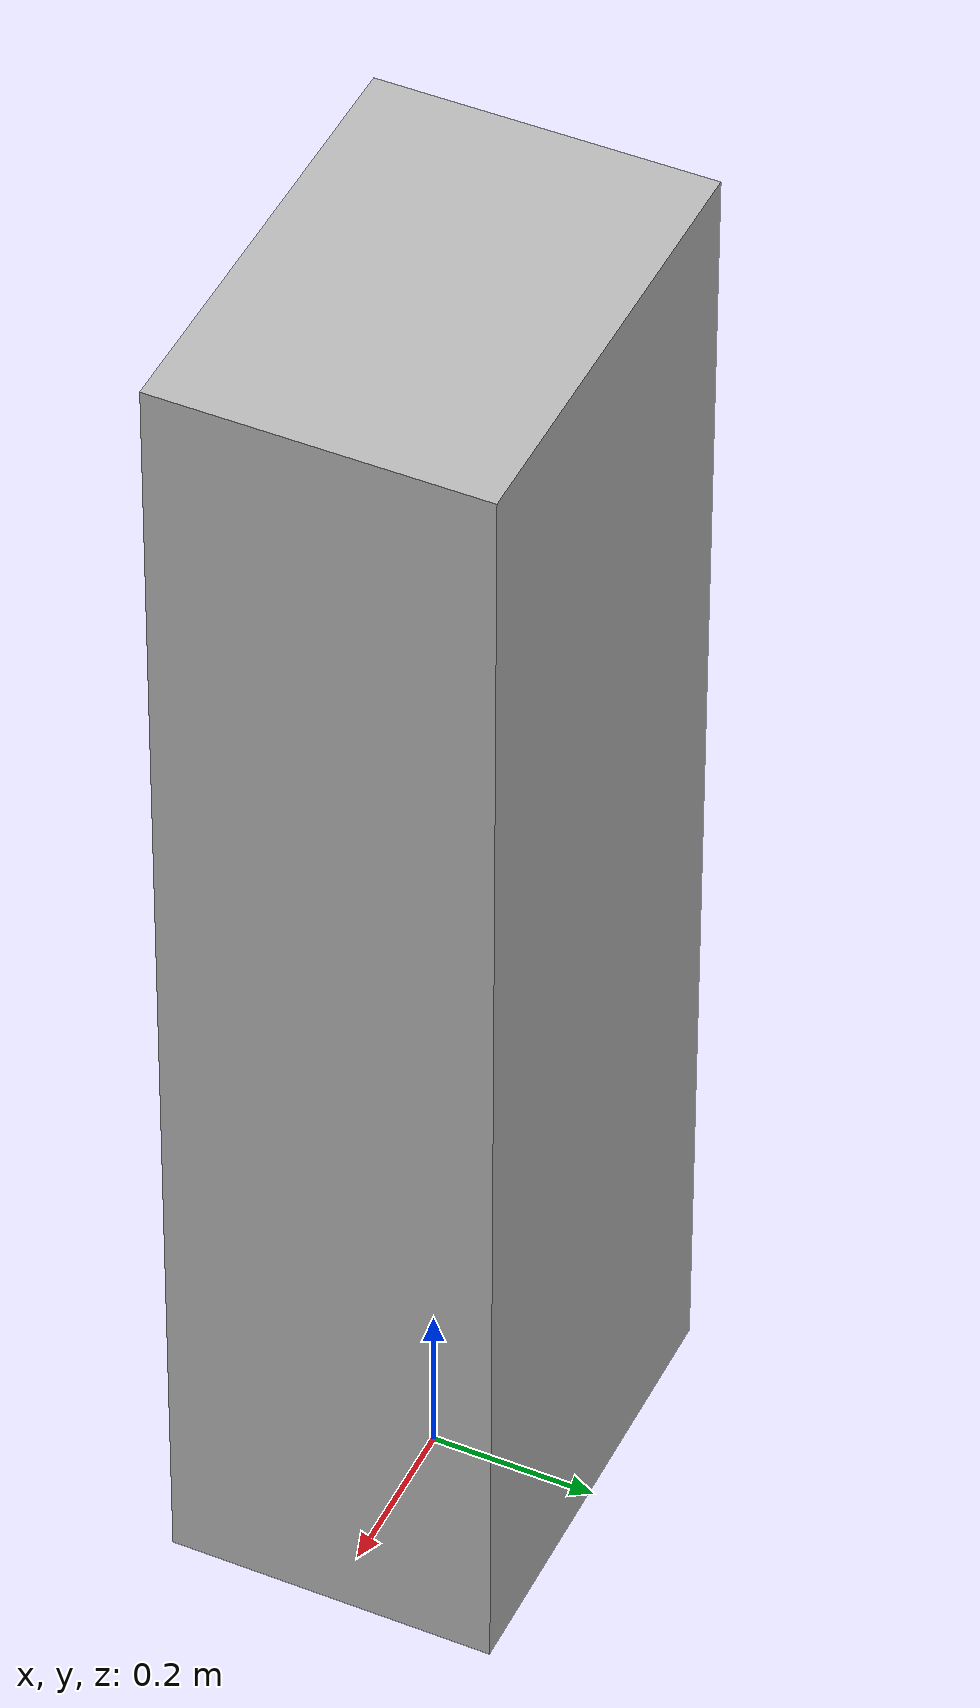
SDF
<?xml version='1.0'?>
<sdf version='1.6'>
  <model name='person_ryan'>
    <link name='link_1'>

    <inertial>
        <mass>1.0</mass>
        <inertia> <!-- inertias are tricky to compute -->
          <!-- http://gazebosim.org/tutorials?tut=inertia&cat=build_robot -->
          <ixx>0.001666666666666667</ixx>       <!-- for a box: ixx = 0.083 * mass * (y*y + z*z) -->
          <ixy>0.0</ixy>         <!-- for a box: ixy = 0 -->
          <ixz>0.0</ixz>         <!-- for a box: ixz = 0 -->
          <iyy>0.001666666666666667</iyy>       <!-- for a box: iyy = 0.083 * mass * (x*x + z*z) -->
          <iyz>0.0</iyz>         <!-- for a box: iyz = 0 -->
          <izz>0.001666666666666667</izz>       <!-- for a box: izz = 0.083 * mass * (x*x + y*y) -->
        </inertia>
      </inertial>
         <visual name='visual'>
        <pose frame=''>0 0 0 0 -0 0</pose>
        <geometry>
          <mesh>
            <uri>model://person_ryan/meshes/person_ryan.dae</uri>
            <scale>1.0 1.0 1.0</scale>
          </mesh>
        </geometry>
        <cast_shadows>0</cast_shadows>
        <transparency>0</transparency>
      </visual>
      <collision name='collision'>
        <laser_retro>0</laser_retro>
        <max_contacts>10</max_contacts>
        <pose frame=''>0 0 0 0 -0 0</pose>
        <geometry>
          <mesh>
            <uri>model://person_ryan/meshes/person_ryan.stl</uri>
            <scale>1.0 1.0 1.0</scale>
          </mesh>
        </geometry>
     </collision>
    </link>

    <static>1</static>
    <allow_auto_disable>1</allow_auto_disable>
  </model>
</sdf>
